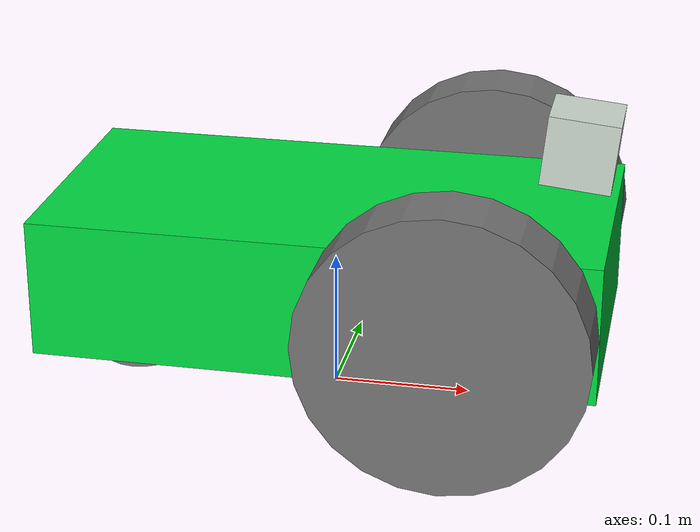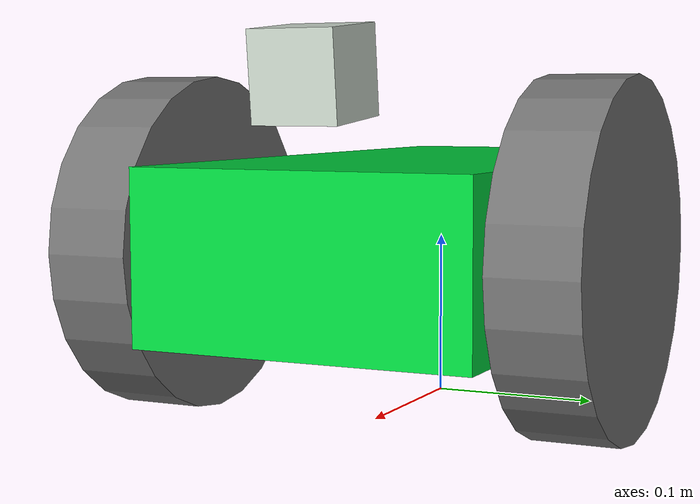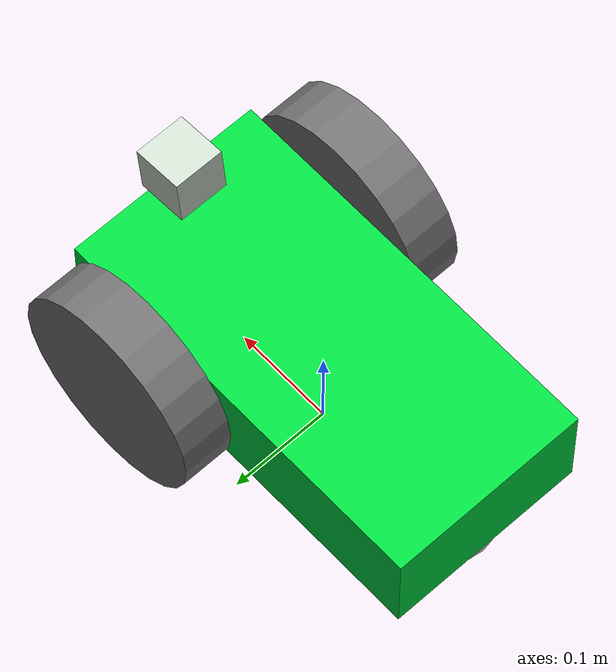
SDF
<?xml version='1.0'?>
<sdf version='1.4'>
	<model name="simple_diff">
		<static>false</static>

		<link name='chassis'>
			<pose>0 0 .1 0 0 0</pose>

			<inertial>
				<mass>5</mass>
				<pose>-.1 0 -.1 0 0 0</pose>
			</inertial>

			<collision name='collision'>
				<geometry>
				<box>
					<size>.4 .2 .1</size>
				</box>
				</geometry>
			</collision>

			<visual name='visual'>
				<geometry>
				<box>
					<size>.4 .2 .1</size>
				</box>
				</geometry>
				<material>
					<ambient>0.5 0.5 0.5 1</ambient>
					<diffuse>0.0 0.85 0.25 1</diffuse>
					<specular>0 0 0 0</specular>
					<emissive>0 0 0 1</emissive>
				</material>
			</visual>

			<collision name='caster_collision'>
				<pose>-0.15 0 -0.05 0 0 0</pose>
				<geometry>
				<sphere>
					<radius>.05</radius>
				</sphere>
				</geometry>

				<surface>
					<friction>
						<ode>
							<mu>0</mu>
							<mu2>0</mu2>
							<slip1>1.0</slip1>
							<slip2>1.0</slip2>
						</ode>
					</friction>
				</surface>
			</collision>

			<visual name='caster_visual'>
				<pose>-0.15 0 -0.05 0 0 0</pose>
				<geometry>
					<sphere>
					<radius>.05</radius>
					</sphere>
				</geometry>
			</visual>
		</link>

		<link name="left_wheel">
			<pose>0.1 0.13 0.1 0 1.5707 1.5707</pose>
			<collision name="collision">
				<geometry>
					<cylinder>
						<radius>.1</radius>
						<length>.05</length>
					</cylinder>
				</geometry>
			</collision>
			<visual name="visual">
				<geometry>
					<cylinder>
						<radius>.1</radius>
						<length>.05</length>
					</cylinder>
				</geometry>
				<material>
					<ambient>0.35 0.35 0.35 1</ambient>
					<diffuse>0.45 0.45 0.45 1</diffuse>
					<specular>0 0 0 0</specular>
					<emissive>0 0 0 1</emissive>
				</material>
			</visual>
		</link>

		<link name="right_wheel">
			<pose>0.1 -0.13 0.1 0 1.5707 1.5707</pose>
			<collision name="collision">
				<geometry>
					<cylinder>
						<radius>.1</radius>
						<length>.05</length>
					</cylinder>
				</geometry>
			</collision>
			<visual name="visual">
				<geometry>
					<cylinder>
						<radius>.1</radius>
						<length>.05</length>
					</cylinder>
				</geometry>
				<material>
					<ambient>0.35 0.35 0.35 1</ambient>
					<diffuse>0.45 0.45 0.45 1</diffuse>
					<specular>0 0 0 0</specular>
					<emissive>0 0 0 1</emissive>
				</material>
			</visual>
		</link>

		<joint type="revolute" name="left_wheel_hinge">
			<pose>0 0 -0.03 0 0 0</pose>
			<child>left_wheel</child>
			<parent>chassis</parent>
			<axis>
				<xyz>0 1 0</xyz>
        <limit>
          <effort>10</effort>
        </limit>
			</axis>
		</joint>

		<joint type="revolute" name="right_wheel_hinge">
			<pose>0 0 0.03 0 0 0</pose>
			<child>right_wheel</child>
			<parent>chassis</parent>
			<axis>
				<xyz>0 1 0</xyz>
        <limit>
          <effort>10</effort>
        </limit>
			</axis>
		</joint>

		<link name="camera_link">
			<gravity>false</gravity>
			<pose>.175 0 .2 0 0.1 0</pose>
			<inertial>
				<mass>0.1</mass>
			</inertial>
			<visual name="visual">
				<geometry>
					<box>
						<size>0.05 0.05 0.05</size>
					</box>
				</geometry>
				<material>
					<ambient>0.75 0.75 0.75 1</ambient>
					<diffuse>0.8 0.85 0.8 1</diffuse>
					<specular>0 0 0 0</specular>
					<emissive>0 0 0 1</emissive>
				</material>
			</visual>
			<sensor name="camera" type="camera">
				<always_on>1</always_on>
				<update_rate>10</update_rate>
				<visualize>true</visualize>
        <topic>camera/image_raw</topic>
        <gz_frame_id>camera_rgb_frame</gz_frame_id>
				<camera>
					<horizontal_fov>2.0</horizontal_fov>
					<image>
						<width>320</width>
						<height>240</height>
						<format>R8G8B8</format>
					</image>

				</camera>
			</sensor>
		</link>

		<joint name="camera_joint" type="fixed">
			<parent>chassis</parent>
			<child>camera_link</child>
		</joint>

		<!-- Controls the differential drive robot -->
    <plugin filename="gz-sim-diff-drive-system" name="gz::sim::systems::DiffDrive">
			<!-- wheels -->
			<left_joint>left_wheel_hinge</left_joint>
			<right_joint>right_wheel_hinge</right_joint>

			<!-- kinematics -->
			<wheel_separation>0.2</wheel_separation>
			<wheel_radius>0.1</wheel_radius>

			<!-- limits -->
			<max_wheel_acceleration>0.25</max_wheel_acceleration>
			<max_linear_acceleration>0.25</max_linear_acceleration>

      <topic>cmd_vel</topic>
      <odom_topic>cmd_vel</odom_topic>

			<!-- output -->
			<publish_odom>true</publish_odom>
			<publish_odom_tf>true</publish_odom_tf>
			<publish_wheel_tf>true</publish_wheel_tf>

			<frame_id>odom</frame_id>
			<child_frame_id>chassis</child_frame_id>
      <odom_publisher_frequency>30</odom_publisher_frequency>
      <tf_topic>/tf</tf_topic>
		</plugin>
    <plugin filename="gz-sim-joint-state-publisher-system"
      name="gz::sim::systems::JointStatePublisher">
        <topic>joint_states</topic>
        <joint_name>wheel_left_joint</joint_name>
        <joint_name>wheel_right_joint</joint_name>
    </plugin>
	</model>
</sdf>
